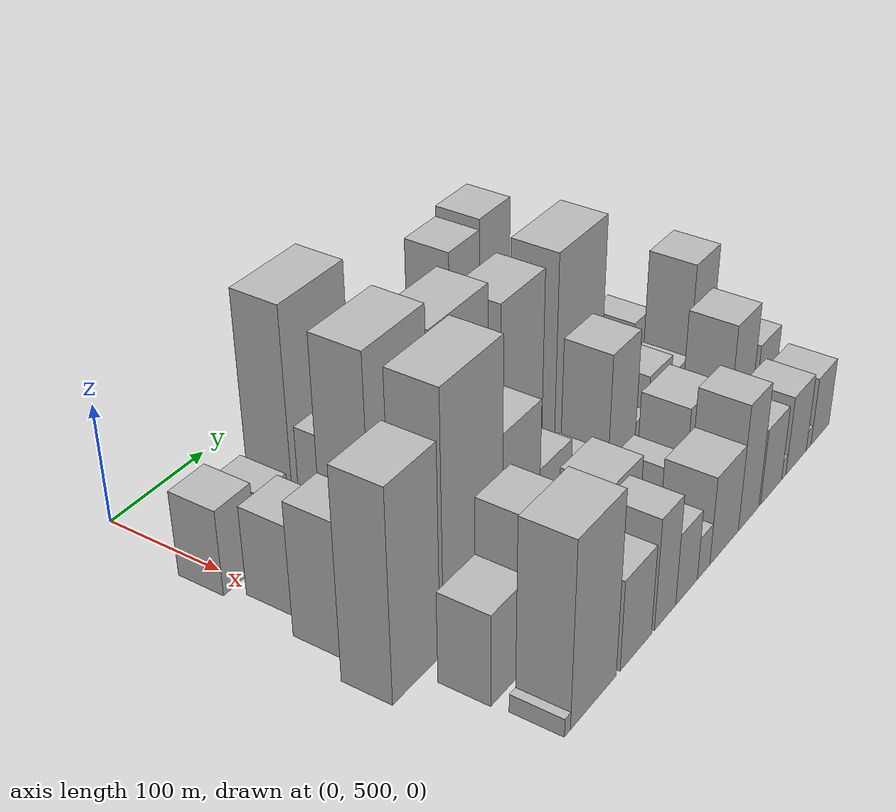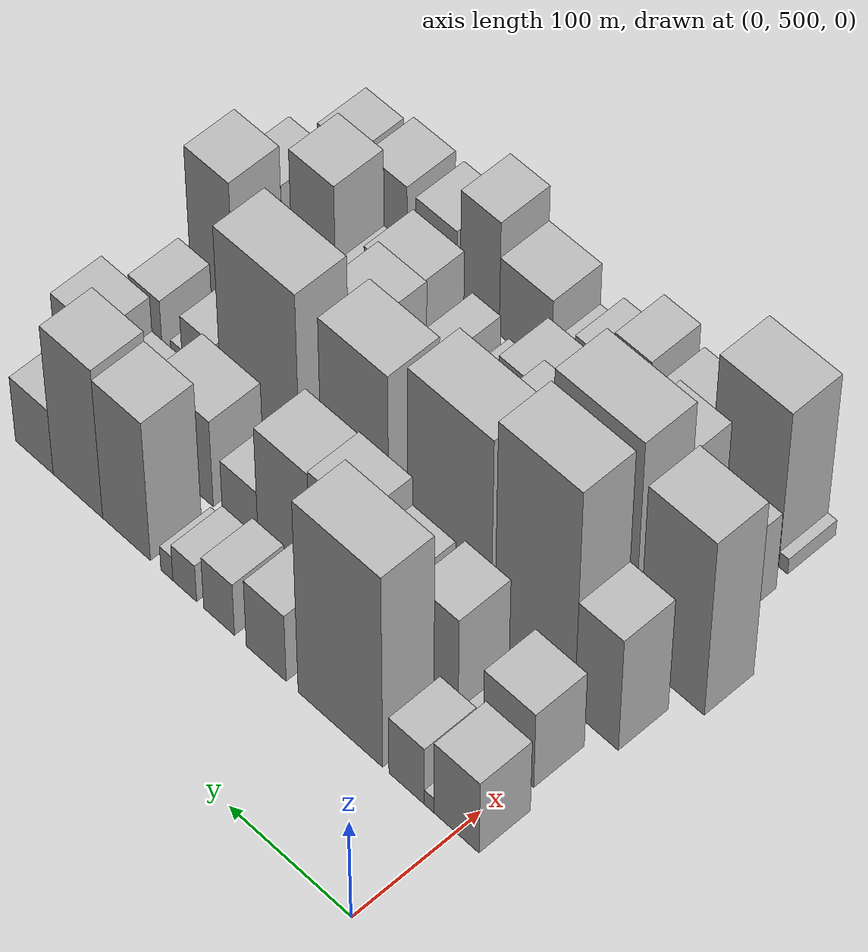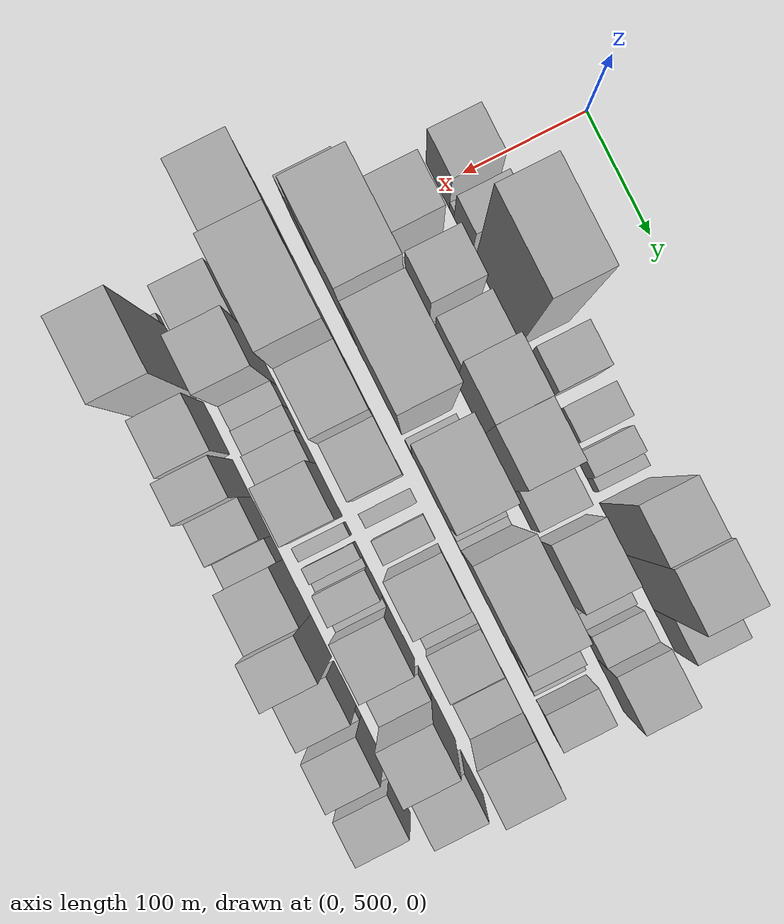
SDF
<sdf version="1.6">
 <world name="default">
  <model name="building_42">
   <static>1</static>
   <pose>100.0000 499.4202 0 0.000000 0.000000 0.000000</pose>
   <link name="link">
    <pose>0 0 36.00 0 0 0</pose>
    <collision name="collision"><geometry><box><size>40.0000 36.6676 72.0000</size></box></geometry></collision>
    <visual name="visual">
     <cast_shadows>0</cast_shadows>
     <geometry><box><size>40.0000 36.6676 72.0000</size></box></geometry>
     <material>
      <script>
       <uri>model://HANNAS_wall/materials/scripts</uri>
       <uri>model://HANNAS_wall/materials/textures</uri>
       <name>vrc/HANNAS_wall</name>
      </script>
     </material>
    </visual>
   </link>
  </model>
  <model name="building_43">
   <static>1</static>
   <pose>100.0000 521.4885 0 0.000000 0.000000 0.000000</pose>
   <link name="link">
    <pose>0 0 7.50 0 0 0</pose>
    <collision name="collision"><geometry><box><size>40.0000 7.4690 15.0000</size></box></geometry></collision>
    <visual name="visual">
     <cast_shadows>0</cast_shadows>
     <geometry><box><size>40.0000 7.4690 15.0000</size></box></geometry>
     <material>
      <script>
       <uri>model://HANNAS_wall/materials/scripts</uri>
       <uri>model://HANNAS_wall/materials/textures</uri>
       <name>vrc/HANNAS_wall</name>
      </script>
     </material>
    </visual>
   </link>
  </model>
  <model name="building_44">
   <static>1</static>
   <pose>100.0000 539.7193 0 0.000000 0.000000 0.000000</pose>
   <link name="link">
    <pose>0 0 28.50 0 0 0</pose>
    <collision name="collision"><geometry><box><size>40.0000 28.9928 57.0000</size></box></geometry></collision>
    <visual name="visual">
     <cast_shadows>0</cast_shadows>
     <geometry><box><size>40.0000 28.9928 57.0000</size></box></geometry>
     <material>
      <script>
       <uri>model://HANNAS_wall/materials/scripts</uri>
       <uri>model://HANNAS_wall/materials/textures</uri>
       <name>vrc/HANNAS_wall</name>
      </script>
     </material>
    </visual>
   </link>
  </model>
  <model name="building_45">
   <static>1</static>
   <pose>100.0000 594.2579 0 0.000000 0.000000 0.000000</pose>
   <link name="link">
    <pose>0 0 94.50 0 0 0</pose>
    <collision name="collision"><geometry><box><size>40.0000 70.0843 189.0000</size></box></geometry></collision>
    <visual name="visual">
     <cast_shadows>0</cast_shadows>
     <geometry><box><size>40.0000 70.0843 189.0000</size></box></geometry>
     <material>
      <script>
       <uri>model://HANNAS_wall/materials/scripts</uri>
       <uri>model://HANNAS_wall/materials/textures</uri>
       <name>vrc/HANNAS_wall</name>
      </script>
     </material>
    </visual>
   </link>
  </model>
  <model name="building_46">
   <static>1</static>
   <pose>100.0000 656.0975 0 0.000000 0.000000 0.000000</pose>
   <link name="link">
    <pose>0 0 33.00 0 0 0</pose>
    <collision name="collision"><geometry><box><size>40.0000 33.5948 66.0000</size></box></geometry></collision>
    <visual name="visual">
     <cast_shadows>0</cast_shadows>
     <geometry><box><size>40.0000 33.5948 66.0000</size></box></geometry>
     <material>
      <script>
       <uri>model://HANNAS_wall/materials/scripts</uri>
       <uri>model://HANNAS_wall/materials/textures</uri>
       <name>vrc/HANNAS_wall</name>
      </script>
     </material>
    </visual>
   </link>
  </model>
  <model name="building_47">
   <static>1</static>
   <pose>100.0000 696.0062 0 0.000000 0.000000 0.000000</pose>
   <link name="link">
    <pose>0 0 25.50 0 0 0</pose>
    <collision name="collision"><geometry><box><size>40.0000 26.2226 51.0000</size></box></geometry></collision>
    <visual name="visual">
     <cast_shadows>0</cast_shadows>
     <geometry><box><size>40.0000 26.2226 51.0000</size></box></geometry>
     <material>
      <script>
       <uri>model://HANNAS_wall/materials/scripts</uri>
       <uri>model://HANNAS_wall/materials/textures</uri>
       <name>vrc/HANNAS_wall</name>
      </script>
     </material>
    </visual>
   </link>
  </model>
  <model name="building_48">
   <static>1</static>
   <pose>100.0000 725.3046 0 0.000000 0.000000 0.000000</pose>
   <link name="link">
    <pose>0 0 18.00 0 0 0</pose>
    <collision name="collision"><geometry><box><size>40.0000 20.3742 36.0000</size></box></geometry></collision>
    <visual name="visual">
     <cast_shadows>0</cast_shadows>
     <geometry><box><size>40.0000 20.3742 36.0000</size></box></geometry>
     <material>
      <script>
       <uri>model://HANNAS_wall/materials/scripts</uri>
       <uri>model://HANNAS_wall/materials/textures</uri>
       <name>vrc/HANNAS_wall</name>
      </script>
     </material>
    </visual>
   </link>
  </model>
  <model name="building_49">
   <static>1</static>
   <pose>100.0000 740.6938 0 0.000000 0.000000 0.000000</pose>
   <link name="link">
    <pose>0 0 12.00 0 0 0</pose>
    <collision name="collision"><geometry><box><size>40.0000 10.4042 24.0000</size></box></geometry></collision>
    <visual name="visual">
     <cast_shadows>0</cast_shadows>
     <geometry><box><size>40.0000 10.4042 24.0000</size></box></geometry>
     <material>
      <script>
       <uri>model://HANNAS_wall/materials/scripts</uri>
       <uri>model://HANNAS_wall/materials/textures</uri>
       <name>vrc/HANNAS_wall</name>
      </script>
     </material>
    </visual>
   </link>
  </model>
  <model name="building_50">
   <static>1</static>
   <pose>100.0000 775.6870 0 0.000000 0.000000 0.000000</pose>
   <link name="link">
    <pose>0 0 67.50 0 0 0</pose>
    <collision name="collision"><geometry><box><size>40.0000 41.5821 135.0000</size></box></geometry></collision>
    <visual name="visual">
     <cast_shadows>0</cast_shadows>
     <geometry><box><size>40.0000 41.5821 135.0000</size></box></geometry>
     <material>
      <script>
       <uri>model://HANNAS_wall/materials/scripts</uri>
       <uri>model://HANNAS_wall/materials/textures</uri>
       <name>vrc/HANNAS_wall</name>
      </script>
     </material>
    </visual>
   </link>
  </model>
  <model name="building_51">
   <static>1</static>
   <pose>100.0000 818.2187 0 0.000000 0.000000 0.000000</pose>
   <link name="link">
    <pose>0 0 72.00 0 0 0</pose>
    <collision name="collision"><geometry><box><size>40.0000 43.4814 144.0000</size></box></geometry></collision>
    <visual name="visual">
     <cast_shadows>0</cast_shadows>
     <geometry><box><size>40.0000 43.4814 144.0000</size></box></geometry>
     <material>
      <script>
       <uri>model://HANNAS_wall/materials/scripts</uri>
       <uri>model://HANNAS_wall/materials/textures</uri>
       <name>vrc/HANNAS_wall</name>
      </script>
     </material>
    </visual>
   </link>
  </model>
  <model name="building_52">
   <static>1</static>
   <pose>100.0000 856.7007 0 0.000000 0.000000 0.000000</pose>
   <link name="link">
    <pose>0 0 31.50 0 0 0</pose>
    <collision name="collision"><geometry><box><size>40.0000 33.4826 63.0000</size></box></geometry></collision>
    <visual name="visual">
     <cast_shadows>0</cast_shadows>
     <geometry><box><size>40.0000 33.4826 63.0000</size></box></geometry>
     <material>
      <script>
       <uri>model://HANNAS_wall/materials/scripts</uri>
       <uri>model://HANNAS_wall/materials/textures</uri>
       <name>vrc/HANNAS_wall</name>
      </script>
     </material>
    </visual>
   </link>
  </model>
  <model name="building_89">
   <static>1</static>
   <pose>152.0000 511.1776 0 0.000000 0.000000 0.000000</pose>
   <link name="link">
    <pose>0 0 37.50 0 0 0</pose>
    <collision name="collision"><geometry><box><size>40.0000 40.9686 75.0000</size></box></geometry></collision>
    <visual name="visual">
     <cast_shadows>0</cast_shadows>
     <geometry><box><size>40.0000 40.9686 75.0000</size></box></geometry>
     <material>
      <script>
       <uri>model://HANNAS_wall/materials/scripts</uri>
       <uri>model://HANNAS_wall/materials/textures</uri>
       <name>vrc/HANNAS_wall</name>
      </script>
     </material>
    </visual>
   </link>
  </model>
  <model name="building_90">
   <static>1</static>
   <pose>152.0000 543.3135 0 0.000000 0.000000 0.000000</pose>
   <link name="link">
    <pose>0 0 10.50 0 0 0</pose>
    <collision name="collision"><geometry><box><size>40.0000 9.3032 21.0000</size></box></geometry></collision>
    <visual name="visual">
     <cast_shadows>0</cast_shadows>
     <geometry><box><size>40.0000 9.3032 21.0000</size></box></geometry>
     <material>
      <script>
       <uri>model://HANNAS_wall/materials/scripts</uri>
       <uri>model://HANNAS_wall/materials/textures</uri>
       <name>vrc/HANNAS_wall</name>
      </script>
     </material>
    </visual>
   </link>
  </model>
  <model name="building_91">
   <static>1</static>
   <pose>152.0000 570.2193 0 0.000000 0.000000 0.000000</pose>
   <link name="link">
    <pose>0 0 51.00 0 0 0</pose>
    <collision name="collision"><geometry><box><size>40.0000 36.5083 102.0000</size></box></geometry></collision>
    <visual name="visual">
     <cast_shadows>0</cast_shadows>
     <geometry><box><size>40.0000 36.5083 102.0000</size></box></geometry>
     <material>
      <script>
       <uri>model://HANNAS_wall/materials/scripts</uri>
       <uri>model://HANNAS_wall/materials/textures</uri>
       <name>vrc/HANNAS_wall</name>
      </script>
     </material>
    </visual>
   </link>
  </model>
  <model name="building_92">
   <static>1</static>
   <pose>152.0000 592.3210 0 0.000000 0.000000 0.000000</pose>
   <link name="link">
    <pose>0 0 9.00 0 0 0</pose>
    <collision name="collision"><geometry><box><size>40.0000 7.6950 18.0000</size></box></geometry></collision>
    <visual name="visual">
     <cast_shadows>0</cast_shadows>
     <geometry><box><size>40.0000 7.6950 18.0000</size></box></geometry>
     <material>
      <script>
       <uri>model://HANNAS_wall/materials/scripts</uri>
       <uri>model://HANNAS_wall/materials/textures</uri>
       <name>vrc/HANNAS_wall</name>
      </script>
     </material>
    </visual>
   </link>
  </model>
  <model name="building_93">
   <static>1</static>
   <pose>152.0000 613.6548 0 0.000000 0.000000 0.000000</pose>
   <link name="link">
    <pose>0 0 46.50 0 0 0</pose>
    <collision name="collision"><geometry><box><size>40.0000 34.9726 93.0000</size></box></geometry></collision>
    <visual name="visual">
     <cast_shadows>0</cast_shadows>
     <geometry><box><size>40.0000 34.9726 93.0000</size></box></geometry>
     <material>
      <script>
       <uri>model://HANNAS_wall/materials/scripts</uri>
       <uri>model://HANNAS_wall/materials/textures</uri>
       <name>vrc/HANNAS_wall</name>
      </script>
     </material>
    </visual>
   </link>
  </model>
  <model name="building_94">
   <static>1</static>
   <pose>152.0000 652.8277 0 0.000000 0.000000 0.000000</pose>
   <link name="link">
    <pose>0 0 60.00 0 0 0</pose>
    <collision name="collision"><geometry><box><size>40.0000 43.3732 120.0000</size></box></geometry></collision>
    <visual name="visual">
     <cast_shadows>0</cast_shadows>
     <geometry><box><size>40.0000 43.3732 120.0000</size></box></geometry>
     <material>
      <script>
       <uri>model://HANNAS_wall/materials/scripts</uri>
       <uri>model://HANNAS_wall/materials/textures</uri>
       <name>vrc/HANNAS_wall</name>
      </script>
     </material>
    </visual>
   </link>
  </model>
  <model name="building_95">
   <static>1</static>
   <pose>152.0000 696.7912 0 0.000000 0.000000 0.000000</pose>
   <link name="link">
    <pose>0 0 58.50 0 0 0</pose>
    <collision name="collision"><geometry><box><size>40.0000 44.5538 117.0000</size></box></geometry></collision>
    <visual name="visual">
     <cast_shadows>0</cast_shadows>
     <geometry><box><size>40.0000 44.5538 117.0000</size></box></geometry>
     <material>
      <script>
       <uri>model://HANNAS_wall/materials/scripts</uri>
       <uri>model://HANNAS_wall/materials/textures</uri>
       <name>vrc/HANNAS_wall</name>
      </script>
     </material>
    </visual>
   </link>
  </model>
  <model name="building_96">
   <static>1</static>
   <pose>152.0000 734.4717 0 0.000000 0.000000 0.000000</pose>
   <link name="link">
    <pose>0 0 27.00 0 0 0</pose>
    <collision name="collision"><geometry><box><size>40.0000 30.8073 54.0000</size></box></geometry></collision>
    <visual name="visual">
     <cast_shadows>0</cast_shadows>
     <geometry><box><size>40.0000 30.8073 54.0000</size></box></geometry>
     <material>
      <script>
       <uri>model://HANNAS_wall/materials/scripts</uri>
       <uri>model://HANNAS_wall/materials/textures</uri>
       <name>vrc/HANNAS_wall</name>
      </script>
     </material>
    </visual>
   </link>
  </model>
  <model name="building_97">
   <static>1</static>
   <pose>152.0000 782.5995 0 0.000000 0.000000 0.000000</pose>
   <link name="link">
    <pose>0 0 42.00 0 0 0</pose>
    <collision name="collision"><geometry><box><size>40.0000 49.4482 84.0000</size></box></geometry></collision>
    <visual name="visual">
     <cast_shadows>0</cast_shadows>
     <geometry><box><size>40.0000 49.4482 84.0000</size></box></geometry>
     <material>
      <script>
       <uri>model://HANNAS_wall/materials/scripts</uri>
       <uri>model://HANNAS_wall/materials/textures</uri>
       <name>vrc/HANNAS_wall</name>
      </script>
     </material>
    </visual>
   </link>
  </model>
  <model name="building_98">
   <static>1</static>
   <pose>152.0000 820.4520 0 0.000000 0.000000 0.000000</pose>
   <link name="link">
    <pose>0 0 13.50 0 0 0</pose>
    <collision name="collision"><geometry><box><size>40.0000 12.2568 27.0000</size></box></geometry></collision>
    <visual name="visual">
     <cast_shadows>0</cast_shadows>
     <geometry><box><size>40.0000 12.2568 27.0000</size></box></geometry>
     <material>
      <script>
       <uri>model://HANNAS_wall/materials/scripts</uri>
       <uri>model://HANNAS_wall/materials/textures</uri>
       <name>vrc/HANNAS_wall</name>
      </script>
     </material>
    </visual>
   </link>
  </model>
  <model name="building_99">
   <static>1</static>
   <pose>152.0000 841.4392 0 0.000000 0.000000 0.000000</pose>
   <link name="link">
    <pose>0 0 21.00 0 0 0</pose>
    <collision name="collision"><geometry><box><size>40.0000 23.7176 42.0000</size></box></geometry></collision>
    <visual name="visual">
     <cast_shadows>0</cast_shadows>
     <geometry><box><size>40.0000 23.7176 42.0000</size></box></geometry>
     <material>
      <script>
       <uri>model://HANNAS_wall/materials/scripts</uri>
       <uri>model://HANNAS_wall/materials/textures</uri>
       <name>vrc/HANNAS_wall</name>
      </script>
     </material>
    </visual>
   </link>
  </model>
  <model name="building_100">
   <static>1</static>
   <pose>152.0000 874.3667 0 0.000000 0.000000 0.000000</pose>
   <link name="link">
    <pose>0 0 37.50 0 0 0</pose>
    <collision name="collision"><geometry><box><size>40.0000 42.1373 75.0000</size></box></geometry></collision>
    <visual name="visual">
     <cast_shadows>0</cast_shadows>
     <geometry><box><size>40.0000 42.1373 75.0000</size></box></geometry>
     <material>
      <script>
       <uri>model://HANNAS_wall/materials/scripts</uri>
       <uri>model://HANNAS_wall/materials/textures</uri>
       <name>vrc/HANNAS_wall</name>
      </script>
     </material>
    </visual>
   </link>
  </model>
  <model name="building_137">
   <static>1</static>
   <pose>204.0000 493.1135 0 0.000000 0.000000 0.000000</pose>
   <link name="link">
    <pose>0 0 55.50 0 0 0</pose>
    <collision name="collision"><geometry><box><size>40.0000 35.4581 111.0000</size></box></geometry></collision>
    <visual name="visual">
     <cast_shadows>0</cast_shadows>
     <geometry><box><size>40.0000 35.4581 111.0000</size></box></geometry>
     <material>
      <script>
       <uri>model://HANNAS_wall/materials/scripts</uri>
       <uri>model://HANNAS_wall/materials/textures</uri>
       <name>vrc/HANNAS_wall</name>
      </script>
     </material>
    </visual>
   </link>
  </model>
  <model name="building_138">
   <static>1</static>
   <pose>204.0000 543.4850 0 0.000000 0.000000 0.000000</pose>
   <link name="link">
    <pose>0 0 108.00 0 0 0</pose>
    <collision name="collision"><geometry><box><size>40.0000 65.2850 216.0000</size></box></geometry></collision>
    <visual name="visual">
     <cast_shadows>0</cast_shadows>
     <geometry><box><size>40.0000 65.2850 216.0000</size></box></geometry>
     <material>
      <script>
       <uri>model://HANNAS_wall/materials/scripts</uri>
       <uri>model://HANNAS_wall/materials/textures</uri>
       <name>vrc/HANNAS_wall</name>
      </script>
     </material>
    </visual>
   </link>
  </model>
  <model name="building_139">
   <static>1</static>
   <pose>204.0000 613.4325 0 0.000000 0.000000 0.000000</pose>
   <link name="link">
    <pose>0 0 97.50 0 0 0</pose>
    <collision name="collision"><geometry><box><size>40.0000 68.6100 195.0000</size></box></geometry></collision>
    <visual name="visual">
     <cast_shadows>0</cast_shadows>
     <geometry><box><size>40.0000 68.6100 195.0000</size></box></geometry>
     <material>
      <script>
       <uri>model://HANNAS_wall/materials/scripts</uri>
       <uri>model://HANNAS_wall/materials/textures</uri>
       <name>vrc/HANNAS_wall</name>
      </script>
     </material>
    </visual>
   </link>
  </model>
  <model name="building_140">
   <static>1</static>
   <pose>204.0000 658.2122 0 0.000000 0.000000 0.000000</pose>
   <link name="link">
    <pose>0 0 13.50 0 0 0</pose>
    <collision name="collision"><geometry><box><size>40.0000 10.9492 27.0000</size></box></geometry></collision>
    <visual name="visual">
     <cast_shadows>0</cast_shadows>
     <geometry><box><size>40.0000 10.9492 27.0000</size></box></geometry>
     <material>
      <script>
       <uri>model://HANNAS_wall/materials/scripts</uri>
       <uri>model://HANNAS_wall/materials/textures</uri>
       <name>vrc/HANNAS_wall</name>
      </script>
     </material>
    </visual>
   </link>
  </model>
  <model name="building_141">
   <static>1</static>
   <pose>204.0000 692.1241 0 0.000000 0.000000 0.000000</pose>
   <link name="link">
    <pose>0 0 85.50 0 0 0</pose>
    <collision name="collision"><geometry><box><size>40.0000 56.8747 171.0000</size></box></geometry></collision>
    <visual name="visual">
     <cast_shadows>0</cast_shadows>
     <geometry><box><size>40.0000 56.8747 171.0000</size></box></geometry>
     <material>
      <script>
       <uri>model://HANNAS_wall/materials/scripts</uri>
       <uri>model://HANNAS_wall/materials/textures</uri>
       <name>vrc/HANNAS_wall</name>
      </script>
     </material>
    </visual>
   </link>
  </model>
  <model name="building_142">
   <static>1</static>
   <pose>204.0000 726.3136 0 0.000000 0.000000 0.000000</pose>
   <link name="link">
    <pose>0 0 13.50 0 0 0</pose>
    <collision name="collision"><geometry><box><size>40.0000 11.5042 27.0000</size></box></geometry></collision>
    <visual name="visual">
     <cast_shadows>0</cast_shadows>
     <geometry><box><size>40.0000 11.5042 27.0000</size></box></geometry>
     <material>
      <script>
       <uri>model://HANNAS_wall/materials/scripts</uri>
       <uri>model://HANNAS_wall/materials/textures</uri>
       <name>vrc/HANNAS_wall</name>
      </script>
     </material>
    </visual>
   </link>
  </model>
  <model name="building_143">
   <static>1</static>
   <pose>204.0000 735.7033 0 0.000000 0.000000 0.000000</pose>
   <link name="link">
    <pose>0 0 9.00 0 0 0</pose>
    <collision name="collision"><geometry><box><size>40.0000 7.2753 18.0000</size></box></geometry></collision>
    <visual name="visual">
     <cast_shadows>0</cast_shadows>
     <geometry><box><size>40.0000 7.2753 18.0000</size></box></geometry>
     <material>
      <script>
       <uri>model://HANNAS_wall/materials/scripts</uri>
       <uri>model://HANNAS_wall/materials/textures</uri>
       <name>vrc/HANNAS_wall</name>
      </script>
     </material>
    </visual>
   </link>
  </model>
  <model name="building_144">
   <static>1</static>
   <pose>204.0000 773.3310 0 0.000000 0.000000 0.000000</pose>
   <link name="link">
    <pose>0 0 87.00 0 0 0</pose>
    <collision name="collision"><geometry><box><size>40.0000 67.9800 174.0000</size></box></geometry></collision>
    <visual name="visual">
     <cast_shadows>0</cast_shadows>
     <geometry><box><size>40.0000 67.9800 174.0000</size></box></geometry>
     <material>
      <script>
       <uri>model://HANNAS_wall/materials/scripts</uri>
       <uri>model://HANNAS_wall/materials/textures</uri>
       <name>vrc/HANNAS_wall</name>
      </script>
     </material>
    </visual>
   </link>
  </model>
  <model name="building_145">
   <static>1</static>
   <pose>204.0000 826.4030 0 0.000000 0.000000 0.000000</pose>
   <link name="link">
    <pose>0 0 28.50 0 0 0</pose>
    <collision name="collision"><geometry><box><size>40.0000 30.1640 57.0000</size></box></geometry></collision>
    <visual name="visual">
     <cast_shadows>0</cast_shadows>
     <geometry><box><size>40.0000 30.1640 57.0000</size></box></geometry>
     <material>
      <script>
       <uri>model://HANNAS_wall/materials/scripts</uri>
       <uri>model://HANNAS_wall/materials/textures</uri>
       <name>vrc/HANNAS_wall</name>
      </script>
     </material>
    </visual>
   </link>
  </model>
  <model name="building_146">
   <static>1</static>
   <pose>204.0000 846.4804 0 0.000000 0.000000 0.000000</pose>
   <link name="link">
    <pose>0 0 12.00 0 0 0</pose>
    <collision name="collision"><geometry><box><size>40.0000 9.9908 24.0000</size></box></geometry></collision>
    <visual name="visual">
     <cast_shadows>0</cast_shadows>
     <geometry><box><size>40.0000 9.9908 24.0000</size></box></geometry>
     <material>
      <script>
       <uri>model://HANNAS_wall/materials/scripts</uri>
       <uri>model://HANNAS_wall/materials/textures</uri>
       <name>vrc/HANNAS_wall</name>
      </script>
     </material>
    </visual>
   </link>
  </model>
  <model name="building_147">
   <static>1</static>
   <pose>204.0000 873.1886 0 0.000000 0.000000 0.000000</pose>
   <link name="link">
    <pose>0 0 27.00 0 0 0</pose>
    <collision name="collision"><geometry><box><size>40.0000 27.4256 54.0000</size></box></geometry></collision>
    <visual name="visual">
     <cast_shadows>0</cast_shadows>
     <geometry><box><size>40.0000 27.4256 54.0000</size></box></geometry>
     <material>
      <script>
       <uri>model://HANNAS_wall/materials/scripts</uri>
       <uri>model://HANNAS_wall/materials/textures</uri>
       <name>vrc/HANNAS_wall</name>
      </script>
     </material>
    </visual>
   </link>
  </model>
  <model name="building_181">
   <static>1</static>
   <pose>256.0000 484.9245 0 0.000000 0.000000 0.000000</pose>
   <link name="link">
    <pose>0 0 85.50 0 0 0</pose>
    <collision name="collision"><geometry><box><size>40.0000 52.9803 171.0000</size></box></geometry></collision>
    <visual name="visual">
     <cast_shadows>0</cast_shadows>
     <geometry><box><size>40.0000 52.9803 171.0000</size></box></geometry>
     <material>
      <script>
       <uri>model://HANNAS_wall/materials/scripts</uri>
       <uri>model://HANNAS_wall/materials/textures</uri>
       <name>vrc/HANNAS_wall</name>
      </script>
     </material>
    </visual>
   </link>
  </model>
  <model name="building_182">
   <static>1</static>
   <pose>256.0000 550.2965 0 0.000000 0.000000 0.000000</pose>
   <link name="link">
    <pose>0 0 103.50 0 0 0</pose>
    <collision name="collision"><geometry><box><size>40.0000 69.7638 207.0000</size></box></geometry></collision>
    <visual name="visual">
     <cast_shadows>0</cast_shadows>
     <geometry><box><size>40.0000 69.7638 207.0000</size></box></geometry>
     <material>
      <script>
       <uri>model://HANNAS_wall/materials/scripts</uri>
       <uri>model://HANNAS_wall/materials/textures</uri>
       <name>vrc/HANNAS_wall</name>
      </script>
     </material>
    </visual>
   </link>
  </model>
  <model name="building_183">
   <static>1</static>
   <pose>256.0000 608.6991 0 0.000000 0.000000 0.000000</pose>
   <link name="link">
    <pose>0 0 66.00 0 0 0</pose>
    <collision name="collision"><geometry><box><size>40.0000 47.0414 132.0000</size></box></geometry></collision>
    <visual name="visual">
     <cast_shadows>0</cast_shadows>
     <geometry><box><size>40.0000 47.0414 132.0000</size></box></geometry>
     <material>
      <script>
       <uri>model://HANNAS_wall/materials/scripts</uri>
       <uri>model://HANNAS_wall/materials/textures</uri>
       <name>vrc/HANNAS_wall</name>
      </script>
     </material>
    </visual>
   </link>
  </model>
  <model name="building_184">
   <static>1</static>
   <pose>256.0000 653.2335 0 0.000000 0.000000 0.000000</pose>
   <link name="link">
    <pose>0 0 37.50 0 0 0</pose>
    <collision name="collision"><geometry><box><size>40.0000 42.0274 75.0000</size></box></geometry></collision>
    <visual name="visual">
     <cast_shadows>0</cast_shadows>
     <geometry><box><size>40.0000 42.0274 75.0000</size></box></geometry>
     <material>
      <script>
       <uri>model://HANNAS_wall/materials/scripts</uri>
       <uri>model://HANNAS_wall/materials/textures</uri>
       <name>vrc/HANNAS_wall</name>
      </script>
     </material>
    </visual>
   </link>
  </model>
  <model name="building_185">
   <static>1</static>
   <pose>256.0000 689.9164 0 0.000000 0.000000 0.000000</pose>
   <link name="link">
    <pose>0 0 12.00 0 0 0</pose>
    <collision name="collision"><geometry><box><size>40.0000 11.3383 24.0000</size></box></geometry></collision>
    <visual name="visual">
     <cast_shadows>0</cast_shadows>
     <geometry><box><size>40.0000 11.3383 24.0000</size></box></geometry>
     <material>
      <script>
       <uri>model://HANNAS_wall/materials/scripts</uri>
       <uri>model://HANNAS_wall/materials/textures</uri>
       <name>vrc/HANNAS_wall</name>
      </script>
     </material>
    </visual>
   </link>
  </model>
  <model name="building_186">
   <static>1</static>
   <pose>256.0000 713.9934 0 0.000000 0.000000 0.000000</pose>
   <link name="link">
    <pose>0 0 18.00 0 0 0</pose>
    <collision name="collision"><geometry><box><size>40.0000 18.8157 36.0000</size></box></geometry></collision>
    <visual name="visual">
     <cast_shadows>0</cast_shadows>
     <geometry><box><size>40.0000 18.8157 36.0000</size></box></geometry>
     <material>
      <script>
       <uri>model://HANNAS_wall/materials/scripts</uri>
       <uri>model://HANNAS_wall/materials/textures</uri>
       <name>vrc/HANNAS_wall</name>
      </script>
     </material>
    </visual>
   </link>
  </model>
  <model name="building_187">
   <static>1</static>
   <pose>256.0000 748.6763 0 0.000000 0.000000 0.000000</pose>
   <link name="link">
    <pose>0 0 57.00 0 0 0</pose>
    <collision name="collision"><geometry><box><size>40.0000 40.5502 114.0000</size></box></geometry></collision>
    <visual name="visual">
     <cast_shadows>0</cast_shadows>
     <geometry><box><size>40.0000 40.5502 114.0000</size></box></geometry>
     <material>
      <script>
       <uri>model://HANNAS_wall/materials/scripts</uri>
       <uri>model://HANNAS_wall/materials/textures</uri>
       <name>vrc/HANNAS_wall</name>
      </script>
     </material>
    </visual>
   </link>
  </model>
  <model name="building_188">
   <static>1</static>
   <pose>256.0000 778.2575 0 0.000000 0.000000 0.000000</pose>
   <link name="link">
    <pose>0 0 16.50 0 0 0</pose>
    <collision name="collision"><geometry><box><size>40.0000 18.6121 33.0000</size></box></geometry></collision>
    <visual name="visual">
     <cast_shadows>0</cast_shadows>
     <geometry><box><size>40.0000 18.6121 33.0000</size></box></geometry>
     <material>
      <script>
       <uri>model://HANNAS_wall/materials/scripts</uri>
       <uri>model://HANNAS_wall/materials/textures</uri>
       <name>vrc/HANNAS_wall</name>
      </script>
     </material>
    </visual>
   </link>
  </model>
  <model name="building_189">
   <static>1</static>
   <pose>256.0000 805.3084 0 0.000000 0.000000 0.000000</pose>
   <link name="link">
    <pose>0 0 31.50 0 0 0</pose>
    <collision name="collision"><geometry><box><size>40.0000 35.4898 63.0000</size></box></geometry></collision>
    <visual name="visual">
     <cast_shadows>0</cast_shadows>
     <geometry><box><size>40.0000 35.4898 63.0000</size></box></geometry>
     <material>
      <script>
       <uri>model://HANNAS_wall/materials/scripts</uri>
       <uri>model://HANNAS_wall/materials/textures</uri>
       <name>vrc/HANNAS_wall</name>
      </script>
     </material>
    </visual>
   </link>
  </model>
  <model name="building_190">
   <static>1</static>
   <pose>256.0000 840.0051 0 0.000000 0.000000 0.000000</pose>
   <link name="link">
    <pose>0 0 22.50 0 0 0</pose>
    <collision name="collision"><geometry><box><size>40.0000 25.9035 45.0000</size></box></geometry></collision>
    <visual name="visual">
     <cast_shadows>0</cast_shadows>
     <geometry><box><size>40.0000 25.9035 45.0000</size></box></geometry>
     <material>
      <script>
       <uri>model://HANNAS_wall/materials/scripts</uri>
       <uri>model://HANNAS_wall/materials/textures</uri>
       <name>vrc/HANNAS_wall</name>
      </script>
     </material>
    </visual>
   </link>
  </model>
  <model name="building_191">
   <static>1</static>
   <pose>256.0000 872.2779 0 0.000000 0.000000 0.000000</pose>
   <link name="link">
    <pose>0 0 63.00 0 0 0</pose>
    <collision name="collision"><geometry><box><size>40.0000 38.6420 126.0000</size></box></geometry></collision>
    <visual name="visual">
     <cast_shadows>0</cast_shadows>
     <geometry><box><size>40.0000 38.6420 126.0000</size></box></geometry>
     <material>
      <script>
       <uri>model://HANNAS_wall/materials/scripts</uri>
       <uri>model://HANNAS_wall/materials/textures</uri>
       <name>vrc/HANNAS_wall</name>
      </script>
     </material>
    </visual>
   </link>
  </model>
  <model name="building_228">
   <static>1</static>
   <pose>308.0000 512.6401 0 0.000000 0.000000 0.000000</pose>
   <link name="link">
    <pose>0 0 37.50 0 0 0</pose>
    <collision name="collision"><geometry><box><size>40.0000 43.2612 75.0000</size></box></geometry></collision>
    <visual name="visual">
     <cast_shadows>0</cast_shadows>
     <geometry><box><size>40.0000 43.2612 75.0000</size></box></geometry>
     <material>
      <script>
       <uri>model://HANNAS_wall/materials/scripts</uri>
       <uri>model://HANNAS_wall/materials/textures</uri>
       <name>vrc/HANNAS_wall</name>
      </script>
     </material>
    </visual>
   </link>
  </model>
  <model name="building_229">
   <static>1</static>
   <pose>308.0000 554.7550 0 0.000000 0.000000 0.000000</pose>
   <link name="link">
    <pose>0 0 60.00 0 0 0</pose>
    <collision name="collision"><geometry><box><size>40.0000 40.9685 120.0000</size></box></geometry></collision>
    <visual name="visual">
     <cast_shadows>0</cast_shadows>
     <geometry><box><size>40.0000 40.9685 120.0000</size></box></geometry>
     <material>
      <script>
       <uri>model://HANNAS_wall/materials/scripts</uri>
       <uri>model://HANNAS_wall/materials/textures</uri>
       <name>vrc/HANNAS_wall</name>
      </script>
     </material>
    </visual>
   </link>
  </model>
  <model name="building_230">
   <static>1</static>
   <pose>308.0000 584.7582 0 0.000000 0.000000 0.000000</pose>
   <link name="link">
    <pose>0 0 16.50 0 0 0</pose>
    <collision name="collision"><geometry><box><size>40.0000 19.0379 33.0000</size></box></geometry></collision>
    <visual name="visual">
     <cast_shadows>0</cast_shadows>
     <geometry><box><size>40.0000 19.0379 33.0000</size></box></geometry>
     <material>
      <script>
       <uri>model://HANNAS_wall/materials/scripts</uri>
       <uri>model://HANNAS_wall/materials/textures</uri>
       <name>vrc/HANNAS_wall</name>
      </script>
     </material>
    </visual>
   </link>
  </model>
  <model name="building_231">
   <static>1</static>
   <pose>308.0000 604.1489 0 0.000000 0.000000 0.000000</pose>
   <link name="link">
    <pose>0 0 18.00 0 0 0</pose>
    <collision name="collision"><geometry><box><size>40.0000 19.7434 36.0000</size></box></geometry></collision>
    <visual name="visual">
     <cast_shadows>0</cast_shadows>
     <geometry><box><size>40.0000 19.7434 36.0000</size></box></geometry>
     <material>
      <script>
       <uri>model://HANNAS_wall/materials/scripts</uri>
       <uri>model://HANNAS_wall/materials/textures</uri>
       <name>vrc/HANNAS_wall</name>
      </script>
     </material>
    </visual>
   </link>
  </model>
  <model name="building_232">
   <static>1</static>
   <pose>308.0000 626.0600 0 0.000000 0.000000 0.000000</pose>
   <link name="link">
    <pose>0 0 22.50 0 0 0</pose>
    <collision name="collision"><geometry><box><size>40.0000 24.0789 45.0000</size></box></geometry></collision>
    <visual name="visual">
     <cast_shadows>0</cast_shadows>
     <geometry><box><size>40.0000 24.0789 45.0000</size></box></geometry>
     <material>
      <script>
       <uri>model://HANNAS_wall/materials/scripts</uri>
       <uri>model://HANNAS_wall/materials/textures</uri>
       <name>vrc/HANNAS_wall</name>
      </script>
     </material>
    </visual>
   </link>
  </model>
  <model name="building_233">
   <static>1</static>
   <pose>308.0000 659.3197 0 0.000000 0.000000 0.000000</pose>
   <link name="link">
    <pose>0 0 39.00 0 0 0</pose>
    <collision name="collision"><geometry><box><size>40.0000 42.4404 78.0000</size></box></geometry></collision>
    <visual name="visual">
     <cast_shadows>0</cast_shadows>
     <geometry><box><size>40.0000 42.4404 78.0000</size></box></geometry>
     <material>
      <script>
       <uri>model://HANNAS_wall/materials/scripts</uri>
       <uri>model://HANNAS_wall/materials/textures</uri>
       <name>vrc/HANNAS_wall</name>
      </script>
     </material>
    </visual>
   </link>
  </model>
  <model name="building_234">
   <static>1</static>
   <pose>308.0000 689.8996 0 0.000000 0.000000 0.000000</pose>
   <link name="link">
    <pose>0 0 12.00 0 0 0</pose>
    <collision name="collision"><geometry><box><size>40.0000 10.7196 24.0000</size></box></geometry></collision>
    <visual name="visual">
     <cast_shadows>0</cast_shadows>
     <geometry><box><size>40.0000 10.7196 24.0000</size></box></geometry>
     <material>
      <script>
       <uri>model://HANNAS_wall/materials/scripts</uri>
       <uri>model://HANNAS_wall/materials/textures</uri>
       <name>vrc/HANNAS_wall</name>
      </script>
     </material>
    </visual>
   </link>
  </model>
  <model name="building_235">
   <static>1</static>
   <pose>308.0000 706.3125 0 0.000000 0.000000 0.000000</pose>
   <link name="link">
    <pose>0 0 13.50 0 0 0</pose>
    <collision name="collision"><geometry><box><size>40.0000 12.1061 27.0000</size></box></geometry></collision>
    <visual name="visual">
     <cast_shadows>0</cast_shadows>
     <geometry><box><size>40.0000 12.1061 27.0000</size></box></geometry>
     <material>
      <script>
       <uri>model://HANNAS_wall/materials/scripts</uri>
       <uri>model://HANNAS_wall/materials/textures</uri>
       <name>vrc/HANNAS_wall</name>
      </script>
     </material>
    </visual>
   </link>
  </model>
  <model name="building_236">
   <static>1</static>
   <pose>308.0000 715.9466 0 0.000000 0.000000 0.000000</pose>
   <link name="link">
    <pose>0 0 7.50 0 0 0</pose>
    <collision name="collision"><geometry><box><size>40.0000 7.1621 15.0000</size></box></geometry></collision>
    <visual name="visual">
     <cast_shadows>0</cast_shadows>
     <geometry><box><size>40.0000 7.1621 15.0000</size></box></geometry>
     <material>
      <script>
       <uri>model://HANNAS_wall/materials/scripts</uri>
       <uri>model://HANNAS_wall/materials/textures</uri>
       <name>vrc/HANNAS_wall</name>
      </script>
     </material>
    </visual>
   </link>
  </model>
  <model name="building_237">
   <static>1</static>
   <pose>308.0000 731.5462 0 0.000000 0.000000 0.000000</pose>
   <link name="link">
    <pose>0 0 21.00 0 0 0</pose>
    <collision name="collision"><geometry><box><size>40.0000 24.0372 42.0000</size></box></geometry></collision>
    <visual name="visual">
     <cast_shadows>0</cast_shadows>
     <geometry><box><size>40.0000 24.0372 42.0000</size></box></geometry>
     <material>
      <script>
       <uri>model://HANNAS_wall/materials/scripts</uri>
       <uri>model://HANNAS_wall/materials/textures</uri>
       <name>vrc/HANNAS_wall</name>
      </script>
     </material>
    </visual>
   </link>
  </model>
  <model name="building_238">
   <static>1</static>
   <pose>308.0000 747.2201 0 0.000000 0.000000 0.000000</pose>
   <link name="link">
    <pose>0 0 7.50 0 0 0</pose>
    <collision name="collision"><geometry><box><size>40.0000 7.3106 15.0000</size></box></geometry></collision>
    <visual name="visual">
     <cast_shadows>0</cast_shadows>
     <geometry><box><size>40.0000 7.3106 15.0000</size></box></geometry>
     <material>
      <script>
       <uri>model://HANNAS_wall/materials/scripts</uri>
       <uri>model://HANNAS_wall/materials/textures</uri>
       <name>vrc/HANNAS_wall</name>
      </script>
     </material>
    </visual>
   </link>
  </model>
  <model name="building_239">
   <static>1</static>
   <pose>308.0000 772.6107 0 0.000000 0.000000 0.000000</pose>
   <link name="link">
    <pose>0 0 37.50 0 0 0</pose>
    <collision name="collision"><geometry><box><size>40.0000 43.4707 75.0000</size></box></geometry></collision>
    <visual name="visual">
     <cast_shadows>0</cast_shadows>
     <geometry><box><size>40.0000 43.4707 75.0000</size></box></geometry>
     <material>
      <script>
       <uri>model://HANNAS_wall/materials/scripts</uri>
       <uri>model://HANNAS_wall/materials/textures</uri>
       <name>vrc/HANNAS_wall</name>
      </script>
     </material>
    </visual>
   </link>
  </model>
  <model name="building_240">
   <static>1</static>
   <pose>308.0000 809.4877 0 0.000000 0.000000 0.000000</pose>
   <link name="link">
    <pose>0 0 18.00 0 0 0</pose>
    <collision name="collision"><geometry><box><size>40.0000 20.2834 36.0000</size></box></geometry></collision>
    <visual name="visual">
     <cast_shadows>0</cast_shadows>
     <geometry><box><size>40.0000 20.2834 36.0000</size></box></geometry>
     <material>
      <script>
       <uri>model://HANNAS_wall/materials/scripts</uri>
       <uri>model://HANNAS_wall/materials/textures</uri>
       <name>vrc/HANNAS_wall</name>
      </script>
     </material>
    </visual>
   </link>
  </model>
  <model name="building_241">
   <static>1</static>
   <pose>308.0000 838.9888 0 0.000000 0.000000 0.000000</pose>
   <link name="link">
    <pose>0 0 54.00 0 0 0</pose>
    <collision name="collision"><geometry><box><size>40.0000 38.7187 108.0000</size></box></geometry></collision>
    <visual name="visual">
     <cast_shadows>0</cast_shadows>
     <geometry><box><size>40.0000 38.7187 108.0000</size></box></geometry>
     <material>
      <script>
       <uri>model://HANNAS_wall/materials/scripts</uri>
       <uri>model://HANNAS_wall/materials/textures</uri>
       <name>vrc/HANNAS_wall</name>
      </script>
     </material>
    </visual>
   </link>
  </model>
  <model name="building_242">
   <static>1</static>
   <pose>308.0000 884.2177 0 0.000000 0.000000 0.000000</pose>
   <link name="link">
    <pose>0 0 33.00 0 0 0</pose>
    <collision name="collision"><geometry><box><size>40.0000 35.7389 66.0000</size></box></geometry></collision>
    <visual name="visual">
     <cast_shadows>0</cast_shadows>
     <geometry><box><size>40.0000 35.7389 66.0000</size></box></geometry>
     <material>
      <script>
       <uri>model://HANNAS_wall/materials/scripts</uri>
       <uri>model://HANNAS_wall/materials/textures</uri>
       <name>vrc/HANNAS_wall</name>
      </script>
     </material>
    </visual>
   </link>
  </model>
  <model name="building_280">
   <static>1</static>
   <pose>360.0000 496.9490 0 0.000000 0.000000 0.000000</pose>
   <link name="link">
    <pose>0 0 7.50 0 0 0</pose>
    <collision name="collision"><geometry><box><size>40.0000 7.2729 15.0000</size></box></geometry></collision>
    <visual name="visual">
     <cast_shadows>0</cast_shadows>
     <geometry><box><size>40.0000 7.2729 15.0000</size></box></geometry>
     <material>
      <script>
       <uri>model://HANNAS_wall/materials/scripts</uri>
       <uri>model://HANNAS_wall/materials/textures</uri>
       <name>vrc/HANNAS_wall</name>
      </script>
     </material>
    </visual>
   </link>
  </model>
  <model name="building_281">
   <static>1</static>
   <pose>360.0000 529.1245 0 0.000000 0.000000 0.000000</pose>
   <link name="link">
    <pose>0 0 75.00 0 0 0</pose>
    <collision name="collision"><geometry><box><size>40.0000 57.0782 150.0000</size></box></geometry></collision>
    <visual name="visual">
     <cast_shadows>0</cast_shadows>
     <geometry><box><size>40.0000 57.0782 150.0000</size></box></geometry>
     <material>
      <script>
       <uri>model://HANNAS_wall/materials/scripts</uri>
       <uri>model://HANNAS_wall/materials/textures</uri>
       <name>vrc/HANNAS_wall</name>
      </script>
     </material>
    </visual>
   </link>
  </model>
  <model name="building_282">
   <static>1</static>
   <pose>360.0000 583.5859 0 0.000000 0.000000 0.000000</pose>
   <link name="link">
    <pose>0 0 37.50 0 0 0</pose>
    <collision name="collision"><geometry><box><size>40.0000 41.8445 75.0000</size></box></geometry></collision>
    <visual name="visual">
     <cast_shadows>0</cast_shadows>
     <geometry><box><size>40.0000 41.8445 75.0000</size></box></geometry>
     <material>
      <script>
       <uri>model://HANNAS_wall/materials/scripts</uri>
       <uri>model://HANNAS_wall/materials/textures</uri>
       <name>vrc/HANNAS_wall</name>
      </script>
     </material>
    </visual>
   </link>
  </model>
  <model name="building_283">
   <static>1</static>
   <pose>360.0000 623.4356 0 0.000000 0.000000 0.000000</pose>
   <link name="link">
    <pose>0 0 46.50 0 0 0</pose>
    <collision name="collision"><geometry><box><size>40.0000 29.8550 93.0000</size></box></geometry></collision>
    <visual name="visual">
     <cast_shadows>0</cast_shadows>
     <geometry><box><size>40.0000 29.8550 93.0000</size></box></geometry>
     <material>
      <script>
       <uri>model://HANNAS_wall/materials/scripts</uri>
       <uri>model://HANNAS_wall/materials/textures</uri>
       <name>vrc/HANNAS_wall</name>
      </script>
     </material>
    </visual>
   </link>
  </model>
  <model name="building_284">
   <static>1</static>
   <pose>360.0000 654.1240 0 0.000000 0.000000 0.000000</pose>
   <link name="link">
    <pose>0 0 30.00 0 0 0</pose>
    <collision name="collision"><geometry><box><size>40.0000 31.5217 60.0000</size></box></geometry></collision>
    <visual name="visual">
     <cast_shadows>0</cast_shadows>
     <geometry><box><size>40.0000 31.5217 60.0000</size></box></geometry>
     <material>
      <script>
       <uri>model://HANNAS_wall/materials/scripts</uri>
       <uri>model://HANNAS_wall/materials/textures</uri>
       <name>vrc/HANNAS_wall</name>
      </script>
     </material>
    </visual>
   </link>
  </model>
  <model name="building_285">
   <static>1</static>
   <pose>360.0000 679.2370 0 0.000000 0.000000 0.000000</pose>
   <link name="link">
    <pose>0 0 18.00 0 0 0</pose>
    <collision name="collision"><geometry><box><size>40.0000 18.7042 36.0000</size></box></geometry></collision>
    <visual name="visual">
     <cast_shadows>0</cast_shadows>
     <geometry><box><size>40.0000 18.7042 36.0000</size></box></geometry>
     <material>
      <script>
       <uri>model://HANNAS_wall/materials/scripts</uri>
       <uri>model://HANNAS_wall/materials/textures</uri>
       <name>vrc/HANNAS_wall</name>
      </script>
     </material>
    </visual>
   </link>
  </model>
  <model name="building_286">
   <static>1</static>
   <pose>360.0000 710.6997 0 0.000000 0.000000 0.000000</pose>
   <link name="link">
    <pose>0 0 37.50 0 0 0</pose>
    <collision name="collision"><geometry><box><size>40.0000 44.2213 75.0000</size></box></geometry></collision>
    <visual name="visual">
     <cast_shadows>0</cast_shadows>
     <geometry><box><size>40.0000 44.2213 75.0000</size></box></geometry>
     <material>
      <script>
       <uri>model://HANNAS_wall/materials/scripts</uri>
       <uri>model://HANNAS_wall/materials/textures</uri>
       <name>vrc/HANNAS_wall</name>
      </script>
     </material>
    </visual>
   </link>
  </model>
  <model name="building_287">
   <static>1</static>
   <pose>360.0000 749.5316 0 0.000000 0.000000 0.000000</pose>
   <link name="link">
    <pose>0 0 54.00 0 0 0</pose>
    <collision name="collision"><geometry><box><size>40.0000 33.4424 108.0000</size></box></geometry></collision>
    <visual name="visual">
     <cast_shadows>0</cast_shadows>
     <geometry><box><size>40.0000 33.4424 108.0000</size></box></geometry>
     <material>
      <script>
       <uri>model://HANNAS_wall/materials/scripts</uri>
       <uri>model://HANNAS_wall/materials/textures</uri>
       <name>vrc/HANNAS_wall</name>
      </script>
     </material>
    </visual>
   </link>
  </model>
  <model name="building_288">
   <static>1</static>
   <pose>360.0000 787.0389 0 0.000000 0.000000 0.000000</pose>
   <link name="link">
    <pose>0 0 33.00 0 0 0</pose>
    <collision name="collision"><geometry><box><size>40.0000 35.5720 66.0000</size></box></geometry></collision>
    <visual name="visual">
     <cast_shadows>0</cast_shadows>
     <geometry><box><size>40.0000 35.5720 66.0000</size></box></geometry>
     <material>
      <script>
       <uri>model://HANNAS_wall/materials/scripts</uri>
       <uri>model://HANNAS_wall/materials/textures</uri>
       <name>vrc/HANNAS_wall</name>
      </script>
     </material>
    </visual>
   </link>
  </model>
  <model name="building_289">
   <static>1</static>
   <pose>360.0000 808.5388 0 0.000000 0.000000 0.000000</pose>
   <link name="link">
    <pose>0 0 9.00 0 0 0</pose>
    <collision name="collision"><geometry><box><size>40.0000 7.4279 18.0000</size></box></geometry></collision>
    <visual name="visual">
     <cast_shadows>0</cast_shadows>
     <geometry><box><size>40.0000 7.4279 18.0000</size></box></geometry>
     <material>
      <script>
       <uri>model://HANNAS_wall/materials/scripts</uri>
       <uri>model://HANNAS_wall/materials/textures</uri>
       <name>vrc/HANNAS_wall</name>
      </script>
     </material>
    </visual>
   </link>
  </model>
  <model name="building_290">
   <static>1</static>
   <pose>360.0000 830.2959 0 0.000000 0.000000 0.000000</pose>
   <link name="link">
    <pose>0 0 34.50 0 0 0</pose>
    <collision name="collision"><geometry><box><size>40.0000 36.0862 69.0000</size></box></geometry></collision>
    <visual name="visual">
     <cast_shadows>0</cast_shadows>
     <geometry><box><size>40.0000 36.0862 69.0000</size></box></geometry>
     <material>
      <script>
       <uri>model://HANNAS_wall/materials/scripts</uri>
       <uri>model://HANNAS_wall/materials/textures</uri>
       <name>vrc/HANNAS_wall</name>
      </script>
     </material>
    </visual>
   </link>
  </model>
  <model name="building_291">
   <static>1</static>
   <pose>360.0000 852.6737 0 0.000000 0.000000 0.000000</pose>
   <link name="link">
    <pose>0 0 9.00 0 0 0</pose>
    <collision name="collision"><geometry><box><size>40.0000 8.6694 18.0000</size></box></geometry></collision>
    <visual name="visual">
     <cast_shadows>0</cast_shadows>
     <geometry><box><size>40.0000 8.6694 18.0000</size></box></geometry>
     <material>
      <script>
       <uri>model://HANNAS_wall/materials/scripts</uri>
       <uri>model://HANNAS_wall/materials/textures</uri>
       <name>vrc/HANNAS_wall</name>
      </script>
     </material>
    </visual>
   </link>
  </model>
  <model name="building_292">
   <static>1</static>
   <pose>360.0000 873.6063 0 0.000000 0.000000 0.000000</pose>
   <link name="link">
    <pose>0 0 30.00 0 0 0</pose>
    <collision name="collision"><geometry><box><size>40.0000 33.1959 60.0000</size></box></geometry></collision>
    <visual name="visual">
     <cast_shadows>0</cast_shadows>
     <geometry><box><size>40.0000 33.1959 60.0000</size></box></geometry>
     <material>
      <script>
       <uri>model://HANNAS_wall/materials/scripts</uri>
       <uri>model://HANNAS_wall/materials/textures</uri>
       <name>vrc/HANNAS_wall</name>
      </script>
     </material>
    </visual>
   </link>
  </model>
 </world>
</sdf>
